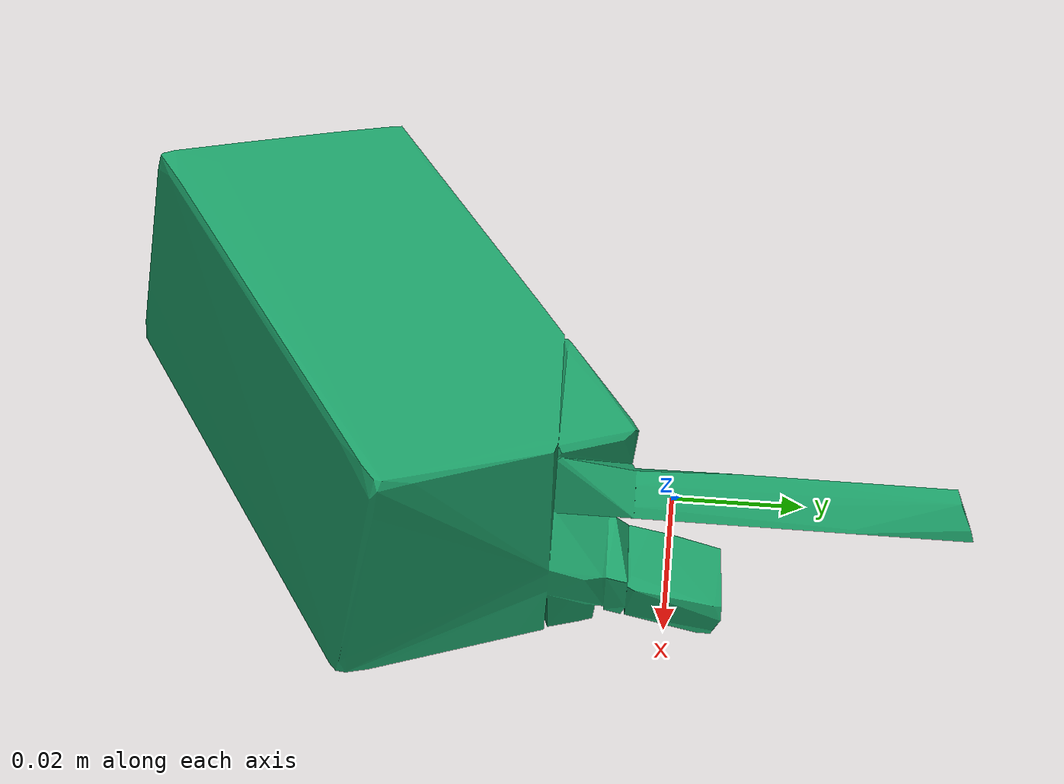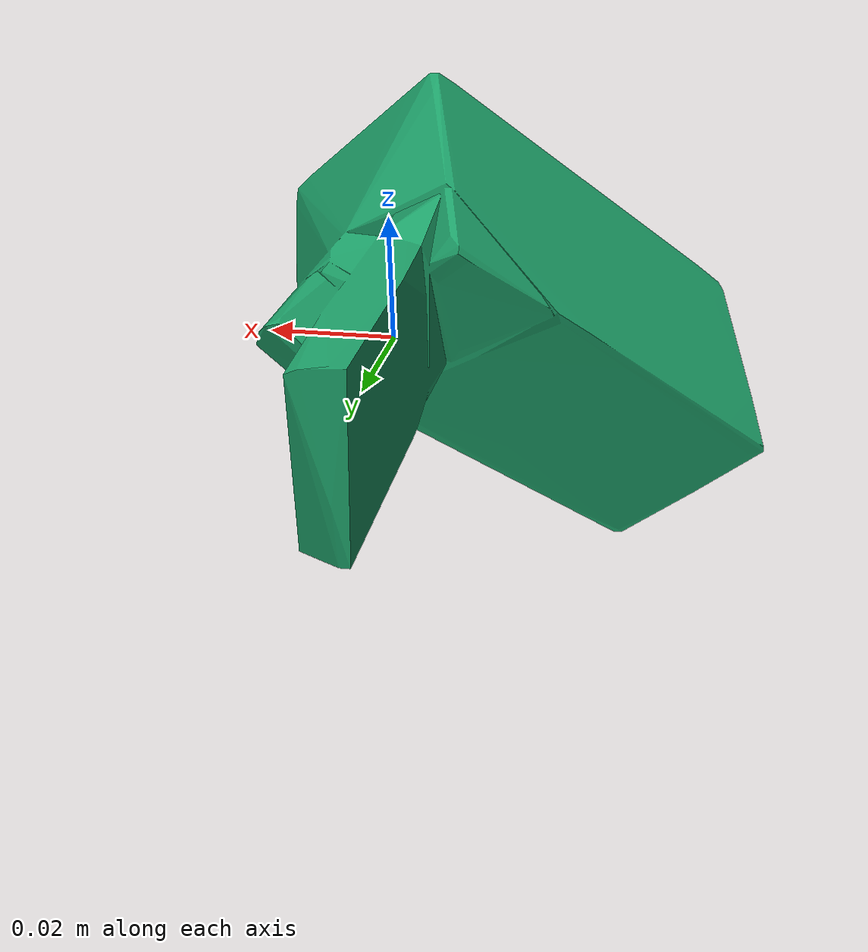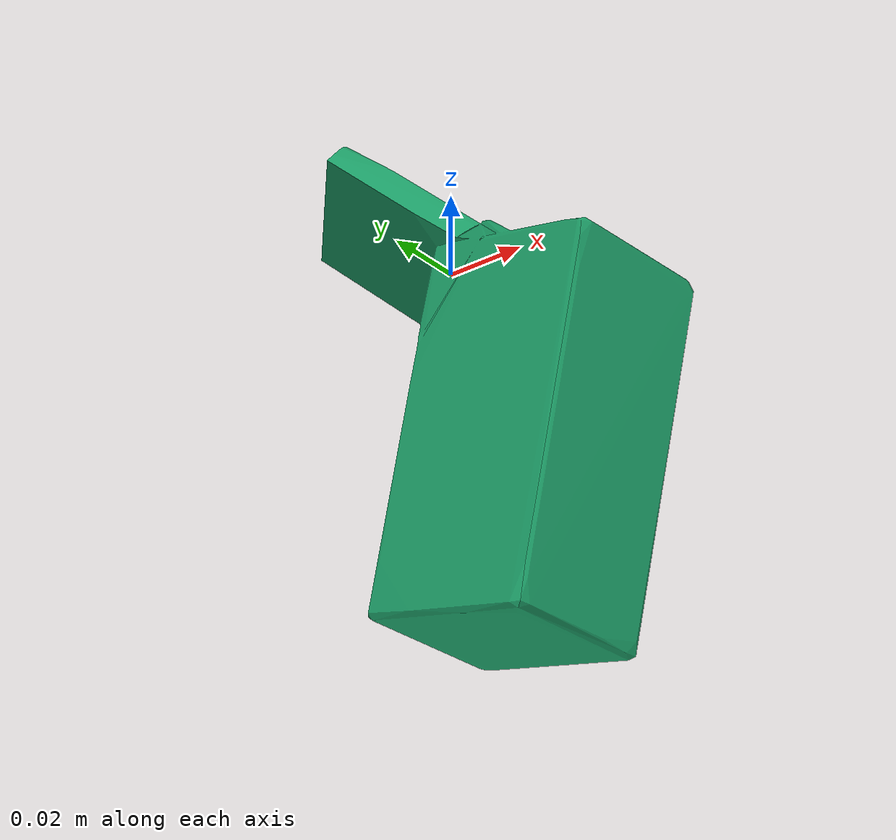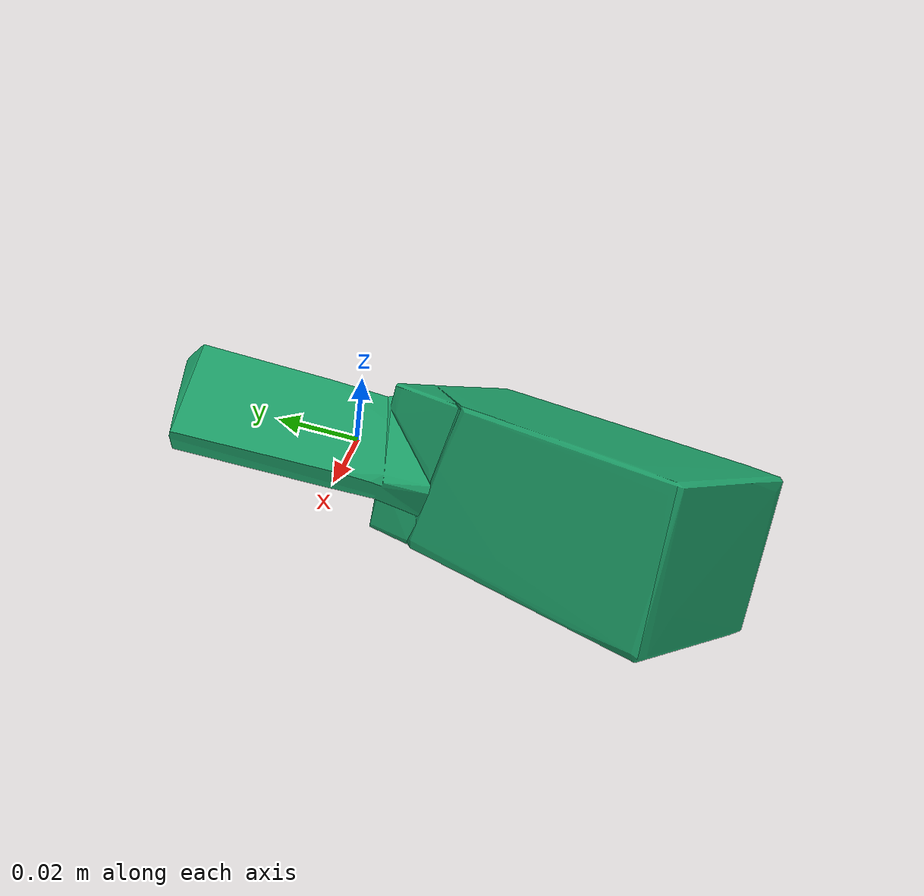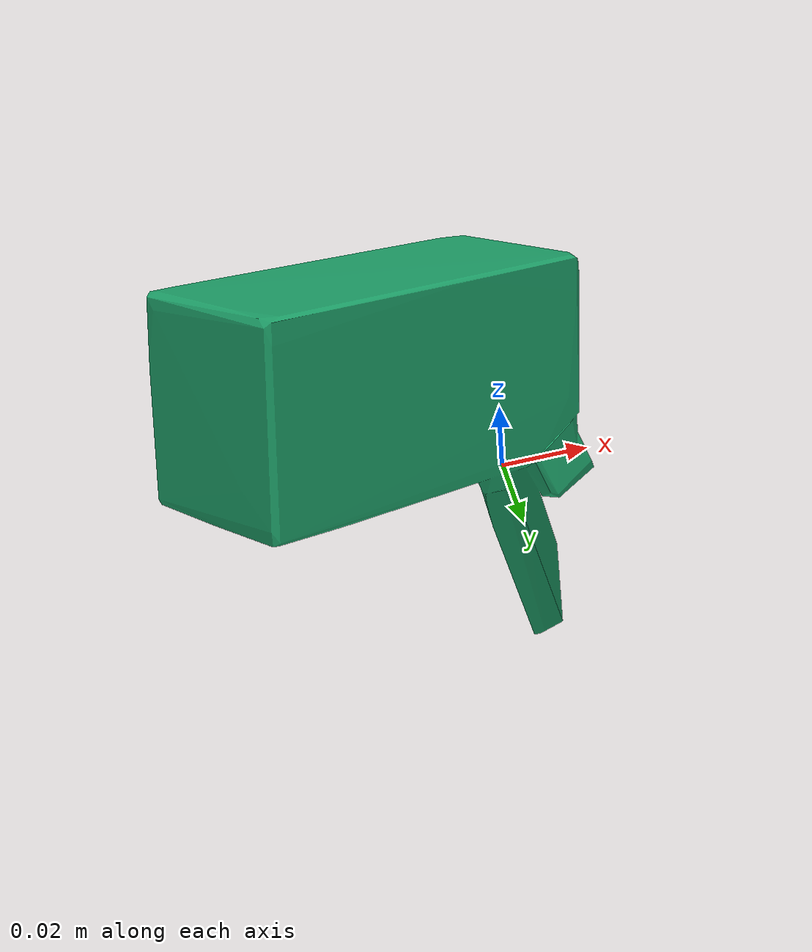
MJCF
<mujoco model="blob002">
    <compiler angle="radian" />
    <size njmax="500" nconmax="100" />
    <asset>
        <mesh name="002_coll" file="002_coll.stl" scale="0.0071 0.0071 0.0071" />
    </asset>
    <worldbody>
        <geom type="mesh" rgba="0.11 0.63 0.41 1" mesh="002_coll" />
    </worldbody>
</mujoco>
